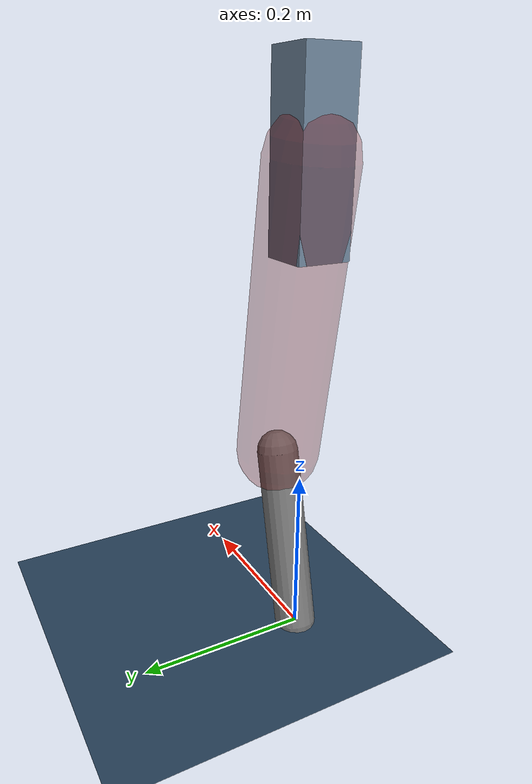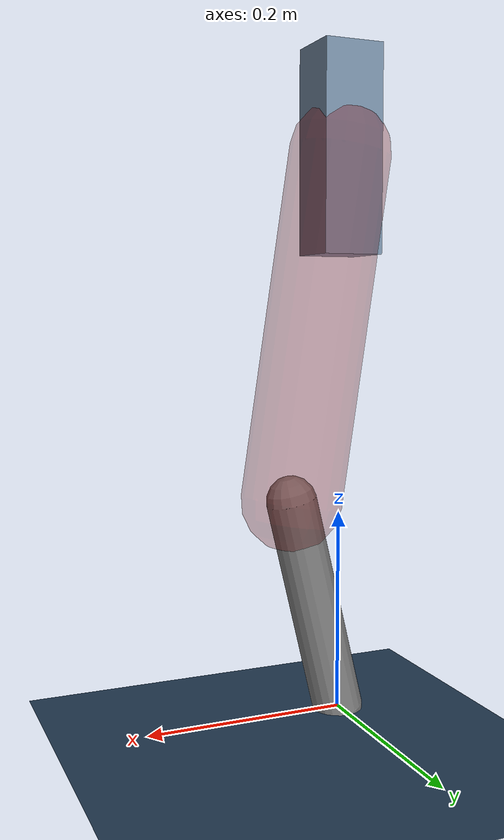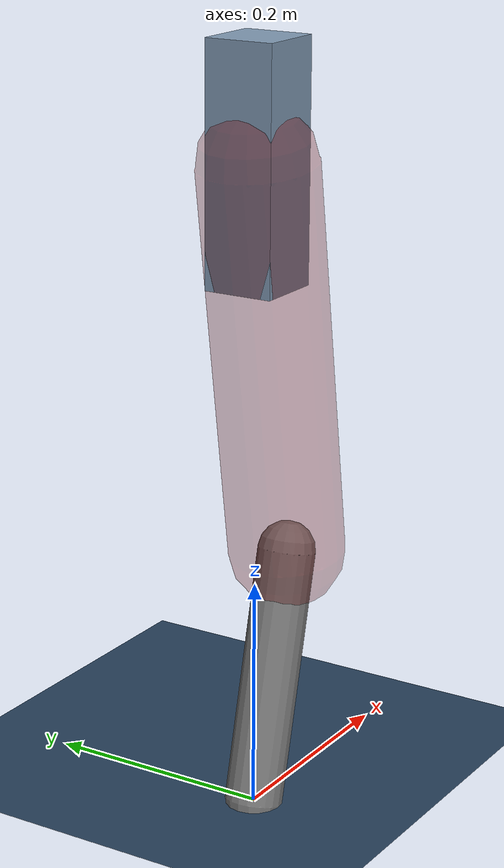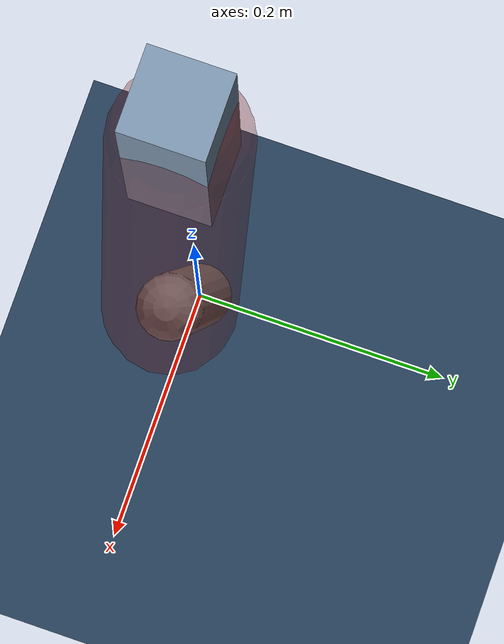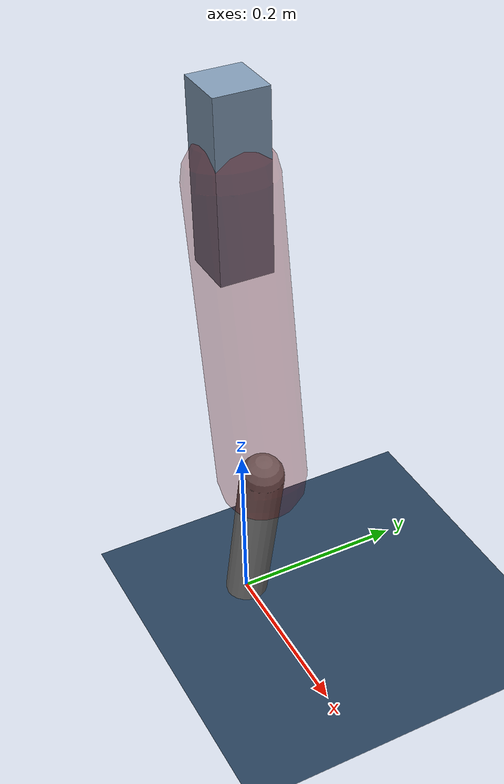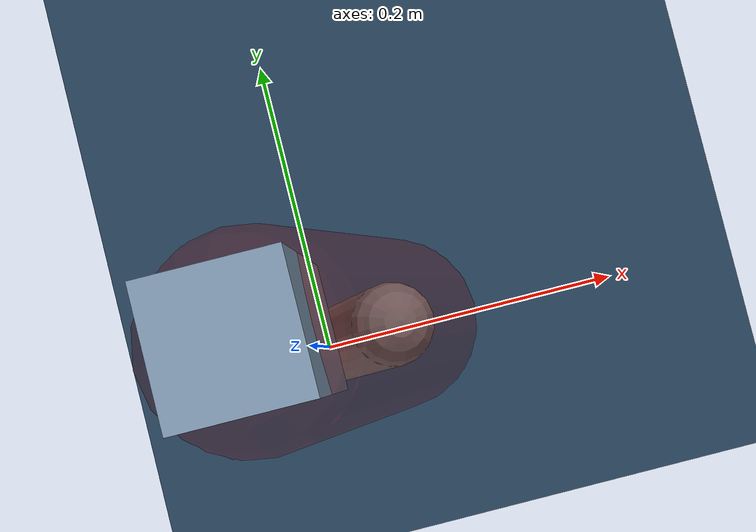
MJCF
<mujoco model="Hopper2D">
	<compiler inertiafromgeom="true" angle="radian" />
	<option timestep="0.001" integrator="implicit" cone="elliptic" solver="Newton" tolerance="1e-10" />

	<default>
		<geom contype="1" conaffinity="1" condim="3" friction="2 0.005 0.0001" solref="0.005 1" />
		<joint limited="true" damping="0.1" />
	</default>

	<asset>
		<texture name="skybox" type="skybox" builtin="gradient" rgb1=".4 .6 .8" rgb2="0 0 0" width="800" height="800" />
		<texture name="grid" type="2d" builtin="checker" rgb1=".1 .2 .3" rgb2=".2 .3 .4" width="300" height="300" mark="edge" markrgb=".2 .3 .4" />
		<material name="ground" texture="grid" texrepeat="1 1" texuniform="true" reflectance="0.1" />
		<material name="leg" rgba="0.5 0.6 0.7 1" />
	</asset>

	<worldbody>

		<geom name="floor" type="plane" size="5 5 0.25" material="ground" />

		<light directional="false" diffuse="0.8 0.8 0.8" specular="0.3 0.3 0.3" pos="0 0 2" dir="0 0 -1" />
		<light mode="targetbodycom" target="base" directional="false" diffuse="0.8 0.8 0.8" specular="0.3 0.3 0.3" pos="0 0 2" dir="0 0 -1" />

		<camera name="fixed" pos="0 -2 1" xyaxes="1 0 0 0 0 1" />
		<camera name="tracking" mode="trackcom" pos="0 -3 1" />

		<body name="root" pos="0 0 0.55497169610947">
			<joint name="slide_x" type="slide" axis="1 0 0" range="-100 100" />
			<joint name="slide_z" type="slide" axis="0 0 1" range="0 10" />

			<body name="base" pos="0 0 0">
				<geom name="torso" type="box" size="0.03 0.03 0.1" mass="3.262" material="leg" />

				<body name="link1" pos="0 0 0" euler="0 1.4203043018060926 0">
					<joint type="hinge" axis="0 -1 0" pos="0 0 0" name="hinge1" limited="true" range="-3.14 3.14" stiffness="0" damping="0.1" />
					<geom name="thigh" type="capsule" fromto="0 0 0 0.3441192511875835 0 0" size="0.05" rgba="0.5 0 0 0.3" mass="1.1101339033252338" />

					<body name="link2" pos="0.3441192511875835 0 0" euler="0 0.3862743020998631 0">
						<joint type="hinge" axis="0 -1 0" pos="0 0 0" name="hinge2" limited="true" range="-3.14 3.14" stiffness="0" damping="0.1" />
						<geom name="shank" type="capsule" fromto="0 0 0 0.22085244492188638 0 0" size="0.025" mass="0.4183819559375091" />

					</body>
				</body>
			</body>
		</body>
	</worldbody>

	<actuator>
		<motor name="torque1" joint="hinge1" ctrlrange="-87.2207914055165 87.2207914055165" ctrllimited="true" gear="1" />
		<motor name="torque2" joint="hinge2" ctrlrange="-144.57797205040546 144.57797205040546" ctrllimited="true" gear="1" />
	</actuator>
</mujoco>
